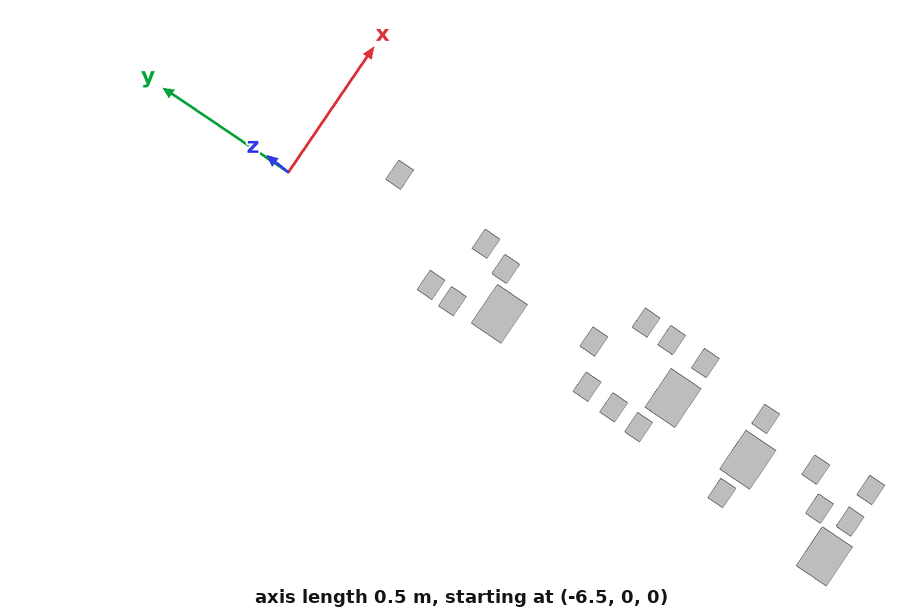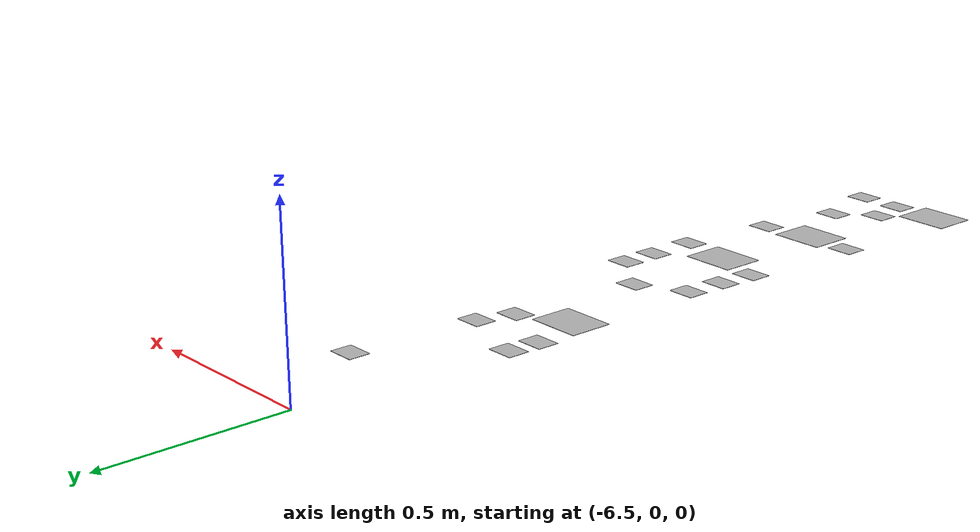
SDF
<sdf version="1.4">
 <world name="default">
  <model name="atags4_1">
   <static>1</static>
   <link name="link">
    <collision name="collision"><geometry><box><size>0.15275 0.11825 0.001</size></box></geometry></collision>
    <visual name="visual">
     <geometry><box><size>0.15275 0.11825 0.001</size></box></geometry>
     <material>
      <script>
       <uri>model://atags4_1/materials/scripts</uri>
       <uri>model://atags4_1/materials/textures</uri>
       <name>atags4_1/Diffuse</name>
      </script>
     </material>
    </visual>
    <velocity_decay><linear>0</linear><angular>0</angular></velocity_decay>
   </link>
   <pose>-6.4037 -1.45621 0 0 -0 0</pose>
  </model>
  <model name="atags4_3">
   <static>1</static>
   <link name="link">
    <collision name="collision"><geometry><box><size>0.15275 0.11825 0.001</size></box></geometry></collision>
    <visual name="visual">
     <geometry><box><size>0.15275 0.11825 0.001</size></box></geometry>
     <material>
      <script>
       <uri>model://atags4_3/materials/scripts</uri>
       <uri>model://atags4_3/materials/textures</uri>
       <name>atags4_3/Diffuse</name>
      </script>
     </material>
    </visual>
    <velocity_decay><linear>0</linear><angular>0</angular></velocity_decay>
   </link>
   <pose>-6.55469 -2.15254 0 0 -0 0</pose>
  </model>
  <model name="atags4_7">
   <static>1</static>
   <link name="link">
    <collision name="collision"><geometry><box><size>0.15275 0.11825 0.001</size></box></geometry></collision>
    <visual name="visual">
     <geometry><box><size>0.15275 0.11825 0.001</size></box></geometry>
     <material>
      <script>
       <uri>model://atags4_7/materials/scripts</uri>
       <uri>model://atags4_7/materials/textures</uri>
       <name>atags4_7/Diffuse</name>
      </script>
     </material>
    </visual>
    <velocity_decay><linear>0</linear><angular>0</angular></velocity_decay>
   </link>
   <pose>-6.49442 -0.831945 0 0 -0 0</pose>
  </model>
  <model name="atags4_14">
   <static>1</static>
   <link name="link">
    <collision name="collision"><geometry><box><size>0.15275 0.11825 0.001</size></box></geometry></collision>
    <visual name="visual">
     <geometry><box><size>0.15275 0.11825 0.001</size></box></geometry>
     <material>
      <script>
       <uri>model://atags4_14/materials/scripts</uri>
       <uri>model://atags4_14/materials/textures</uri>
       <name>atags4_14/Diffuse</name>
      </script>
     </material>
    </visual>
    <velocity_decay><linear>0</linear><angular>0</angular></velocity_decay>
   </link>
   <pose>-6.43384 -1.77078 0 0 -0 0</pose>
  </model>
  <model name="at194">
   <static>1</static>
   <link name="link">
    <collision name="collision"><geometry><box><size>0.0763 0.05912 0.001</size></box></geometry></collision>
    <visual name="visual">
     <geometry><box><size>0.0763 0.05912 0.001</size></box></geometry>
     <material>
      <script>
       <uri>model://at194/materials/scripts</uri>
       <uri>model://at194/materials/textures</uri>
       <name>at194/Diffuse</name>
      </script>
     </material>
    </visual>
    <velocity_decay><linear>0</linear><angular>0</angular></velocity_decay>
   </link>
   <pose>-6.36104 -0.766976 0 0 -0 0</pose>
  </model>
  <model name="at195">
   <static>1</static>
   <link name="link">
    <collision name="collision"><geometry><box><size>0.0763 0.05912 0.001</size></box></geometry></collision>
    <visual name="visual">
     <geometry><box><size>0.0763 0.05912 0.001</size></box></geometry>
     <material>
      <script>
       <uri>model://at195/materials/scripts</uri>
       <uri>model://at195/materials/textures</uri>
       <name>at195/Diffuse</name>
      </script>
     </material>
    </visual>
    <velocity_decay><linear>0</linear><angular>0</angular></velocity_decay>
   </link>
   <pose>-6.2905 -2.15801 0 0 -0 0</pose>
  </model>
  <model name="at197">
   <static>1</static>
   <link name="link">
    <collision name="collision"><geometry><box><size>0.0763 0.05912 0.001</size></box></geometry></collision>
    <visual name="visual">
     <geometry><box><size>0.0763 0.05912 0.001</size></box></geometry>
     <material>
      <script>
       <uri>model://at197/materials/scripts</uri>
       <uri>model://at197/materials/textures</uri>
       <name>at197/Diffuse</name>
      </script>
     </material>
    </visual>
    <velocity_decay><linear>0</linear><angular>0</angular></velocity_decay>
   </link>
   <pose>-6.24942 -1.34705 0 0 -0 0</pose>
  </model>
  <model name="at201">
   <static>1</static>
   <link name="link">
    <collision name="collision"><geometry><box><size>0.0763 0.05912 0.001</size></box></geometry></collision>
    <visual name="visual">
     <geometry><box><size>0.0763 0.05912 0.001</size></box></geometry>
     <material>
      <script>
       <uri>model://at201/materials/scripts</uri>
       <uri>model://at201/materials/textures</uri>
       <name>at201/Diffuse</name>
      </script>
     </material>
    </visual>
    <velocity_decay><linear>0</linear><angular>0</angular></velocity_decay>
   </link>
   <pose>-6.5378 -1.31286 0 0 -0 0</pose>
  </model>
  <model name="at206">
   <static>1</static>
   <link name="link">
    <collision name="collision"><geometry><box><size>0.0763 0.05912 0.001</size></box></geometry></collision>
    <visual name="visual">
     <geometry><box><size>0.0763 0.05912 0.001</size></box></geometry>
     <material>
      <script>
       <uri>model://at206/materials/scripts</uri>
       <uri>model://at206/materials/textures</uri>
       <name>at206/Diffuse</name>
      </script>
     </material>
    </visual>
    <velocity_decay><linear>0</linear><angular>0</angular></velocity_decay>
   </link>
   <pose>-6.25019 -1.4803 0 0 -0 0</pose>
  </model>
  <model name="at209">
   <static>1</static>
   <link name="link">
    <collision name="collision"><geometry><box><size>0.0763 0.05912 0.001</size></box></geometry></collision>
    <visual name="visual">
     <geometry><box><size>0.0763 0.05912 0.001</size></box></geometry>
     <material>
      <script>
       <uri>model://at209/materials/scripts</uri>
       <uri>model://at209/materials/textures</uri>
       <name>at209/Diffuse</name>
      </script>
     </material>
    </visual>
    <velocity_decay><linear>0</linear><angular>0</angular></velocity_decay>
   </link>
   <pose>-6.29037 -1.74489 0 0 -0 0</pose>
  </model>
  <model name="at210">
   <static>1</static>
   <link name="link">
    <collision name="collision"><geometry><box><size>0.0763 0.05912 0.001</size></box></geometry></collision>
    <visual name="visual">
     <geometry><box><size>0.0763 0.05912 0.001</size></box></geometry>
     <material>
      <script>
       <uri>model://at210/materials/scripts</uri>
       <uri>model://at210/materials/textures</uri>
       <name>at210/Diffuse</name>
      </script>
     </material>
    </visual>
    <velocity_decay><linear>0</linear><angular>0</angular></velocity_decay>
   </link>
   <pose>-6.54575 -1.41615 0 0 -0 0</pose>
  </model>
  <model name="at215">
   <static>1</static>
   <link name="link">
    <collision name="collision"><geometry><box><size>0.0763 0.05912 0.001</size></box></geometry></collision>
    <visual name="visual">
     <geometry><box><size>0.0763 0.05912 0.001</size></box></geometry>
     <material>
      <script>
       <uri>model://at215/materials/scripts</uri>
       <uri>model://at215/materials/textures</uri>
       <name>at215/Diffuse</name>
      </script>
     </material>
    </visual>
    <velocity_decay><linear>0</linear><angular>0</angular></velocity_decay>
   </link>
   <pose>-6.24888 -1.24572 0 0 -0 0</pose>
  </model>
  <model name="at224">
   <static>1</static>
   <link name="link">
    <collision name="collision"><geometry><box><size>0.0763 0.05912 0.001</size></box></geometry></collision>
    <visual name="visual">
     <geometry><box><size>0.0763 0.05912 0.001</size></box></geometry>
     <material>
      <script>
       <uri>model://at224/materials/scripts</uri>
       <uri>model://at224/materials/textures</uri>
       <name>at224/Diffuse</name>
      </script>
     </material>
    </visual>
    <velocity_decay><linear>0</linear><angular>0</angular></velocity_decay>
   </link>
   <pose>-6.5307 -1.20295 0 0 -0 0</pose>
  </model>
  <model name="at225">
   <static>1</static>
   <link name="link">
    <collision name="collision"><geometry><box><size>0.0763 0.05912 0.001</size></box></geometry></collision>
    <visual name="visual">
     <geometry><box><size>0.0763 0.05912 0.001</size></box></geometry>
     <material>
      <script>
       <uri>model://at225/materials/scripts</uri>
       <uri>model://at225/materials/textures</uri>
       <name>at225/Diffuse</name>
      </script>
     </material>
    </visual>
    <velocity_decay><linear>0</linear><angular>0</angular></velocity_decay>
   </link>
   <pose>-6.41402 -2.15917 0 0 -0 0</pose>
  </model>
  <model name="at227">
   <static>1</static>
   <link name="link">
    <collision name="collision"><geometry><box><size>0.0763 0.05912 0.001</size></box></geometry></collision>
    <visual name="visual">
     <geometry><box><size>0.0763 0.05912 0.001</size></box></geometry>
     <material>
      <script>
       <uri>model://at227/materials/scripts</uri>
       <uri>model://at227/materials/textures</uri>
       <name>at227/Diffuse</name>
      </script>
     </material>
    </visual>
    <velocity_decay><linear>0</linear><angular>0</angular></velocity_decay>
   </link>
   <pose>-6.57128 -1.76097 0 0 -0 0</pose>
  </model>
  <model name="at229">
   <static>1</static>
   <link name="link">
    <collision name="collision"><geometry><box><size>0.0763 0.05912 0.001</size></box></geometry></collision>
    <visual name="visual">
     <geometry><box><size>0.0763 0.05912 0.001</size></box></geometry>
     <material>
      <script>
       <uri>model://at229/materials/scripts</uri>
       <uri>model://at229/materials/textures</uri>
       <name>at229/Diffuse</name>
      </script>
     </material>
    </visual>
    <velocity_decay><linear>0</linear><angular>0</angular></velocity_decay>
   </link>
   <pose>-6.32881 -0.667432 0 0 -0 0</pose>
  </model>
  <model name="at238">
   <static>1</static>
   <link name="link">
    <collision name="collision"><geometry><box><size>0.0763 0.05912 0.001</size></box></geometry></collision>
    <visual name="visual">
     <geometry><box><size>0.0763 0.05912 0.001</size></box></geometry>
     <material>
      <script>
       <uri>model://at238/materials/scripts</uri>
       <uri>model://at238/materials/textures</uri>
       <name>at238/Diffuse</name>
      </script>
     </material>
    </visual>
    <velocity_decay><linear>0</linear><angular>0</angular></velocity_decay>
   </link>
   <pose>-6.54626 -0.681831 0 0 -0 0</pose>
  </model>
  <model name="at240">
   <static>1</static>
   <link name="link">
    <collision name="collision"><geometry><box><size>0.0763 0.05912 0.001</size></box></geometry></collision>
    <visual name="visual">
     <geometry><box><size>0.0763 0.05912 0.001</size></box></geometry>
     <material>
      <script>
       <uri>model://at240/materials/scripts</uri>
       <uri>model://at240/materials/textures</uri>
       <name>at240/Diffuse</name>
      </script>
     </material>
    </visual>
    <velocity_decay><linear>0</linear><angular>0</angular></velocity_decay>
   </link>
   <pose>-6.54136 -0.593951 0 0 -0 0</pose>
  </model>
  <model name="at242">
   <static>1</static>
   <link name="link">
    <collision name="collision"><geometry><box><size>0.0763 0.05912 0.001</size></box></geometry></collision>
    <visual name="visual">
     <geometry><box><size>0.0763 0.05912 0.001</size></box></geometry>
     <material>
      <script>
       <uri>model://at242/materials/scripts</uri>
       <uri>model://at242/materials/textures</uri>
       <name>at242/Diffuse</name>
      </script>
     </material>
    </visual>
    <velocity_decay><linear>0</linear><angular>0</angular></velocity_decay>
   </link>
   <pose>-6.43466 -2.05285 0 0 -0 0</pose>
  </model>
  <model name="at243">
   <static>1</static>
   <link name="link">
    <collision name="collision"><geometry><box><size>0.0763 0.05912 0.001</size></box></geometry></collision>
    <visual name="visual">
     <geometry><box><size>0.0763 0.05912 0.001</size></box></geometry>
     <material>
      <script>
       <uri>model://at243/materials/scripts</uri>
       <uri>model://at243/materials/textures</uri>
       <name>at243/Diffuse</name>
      </script>
     </material>
    </visual>
    <velocity_decay><linear>0</linear><angular>0</angular></velocity_decay>
   </link>
   <pose>-6.33643 -1.97248 0 0 -0 0</pose>
  </model>
  <model name="at245">
   <static>1</static>
   <link name="link">
    <collision name="collision"><geometry><box><size>0.0763 0.05912 0.001</size></box></geometry></collision>
    <visual name="visual">
     <geometry><box><size>0.0763 0.05912 0.001</size></box></geometry>
     <material>
      <script>
       <uri>model://at245/materials/scripts</uri>
       <uri>model://at245/materials/textures</uri>
       <name>at245/Diffuse</name>
      </script>
     </material>
    </visual>
    <velocity_decay><linear>0</linear><angular>0</angular></velocity_decay>
   </link>
   <pose>-6.29999 -0.305768 0 0 -0 0</pose>
  </model>
  <model name="at251">
   <static>1</static>
   <link name="link">
    <collision name="collision"><geometry><box><size>0.0763 0.05912 0.001</size></box></geometry></collision>
    <visual name="visual">
     <geometry><box><size>0.0763 0.05912 0.001</size></box></geometry>
     <material>
      <script>
       <uri>model://at251/materials/scripts</uri>
       <uri>model://at251/materials/textures</uri>
       <name>at251/Diffuse</name>
      </script>
     </material>
    </visual>
    <velocity_decay><linear>0</linear><angular>0</angular></velocity_decay>
   </link>
   <pose>-6.39595 -1.13879 0 0 -0 0</pose>
  </model>
 </world>
</sdf>
